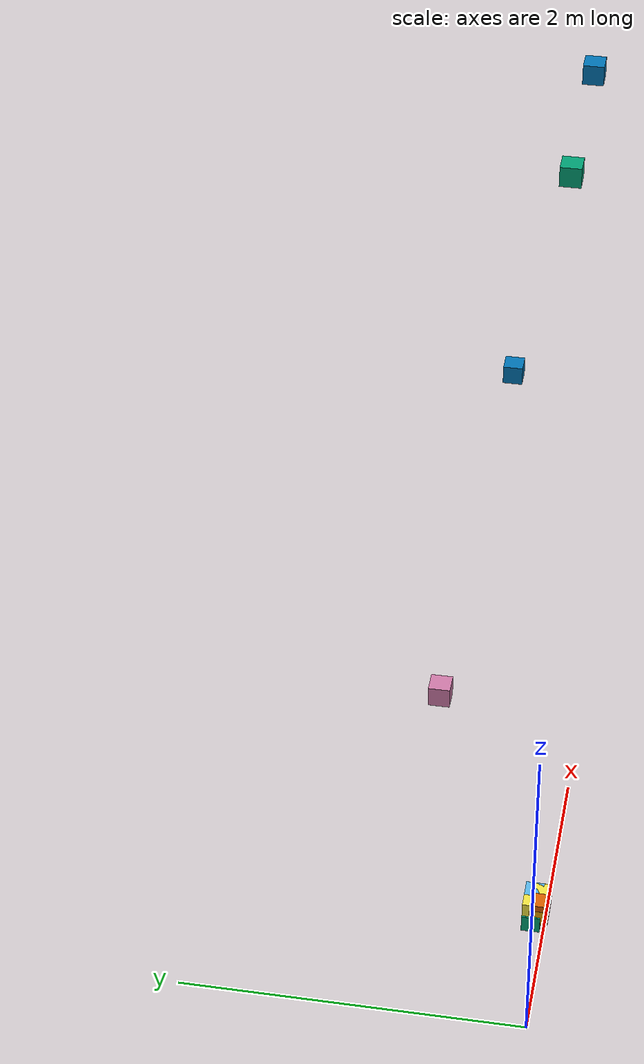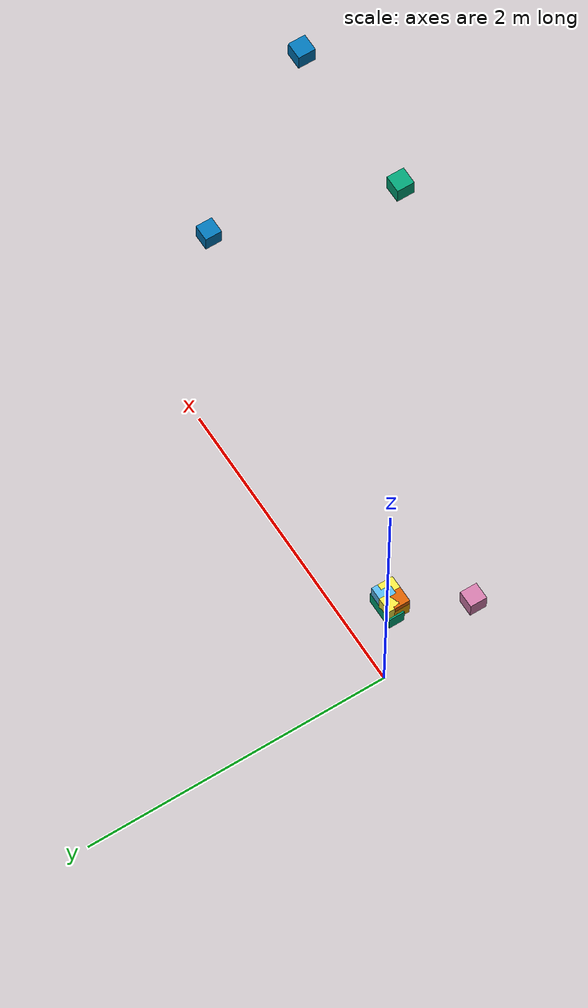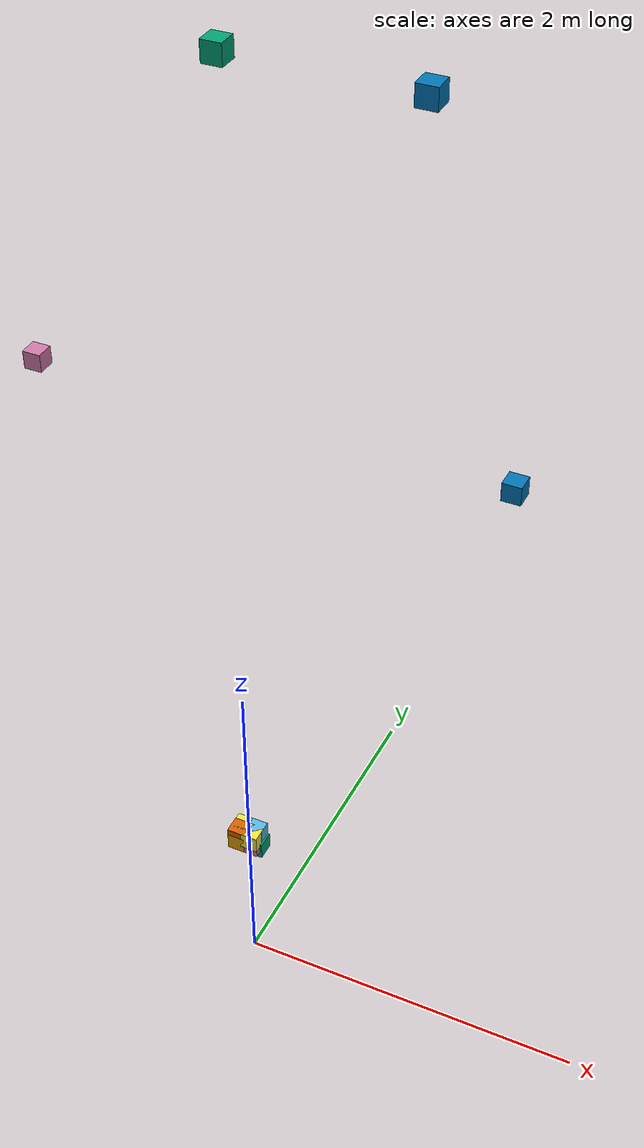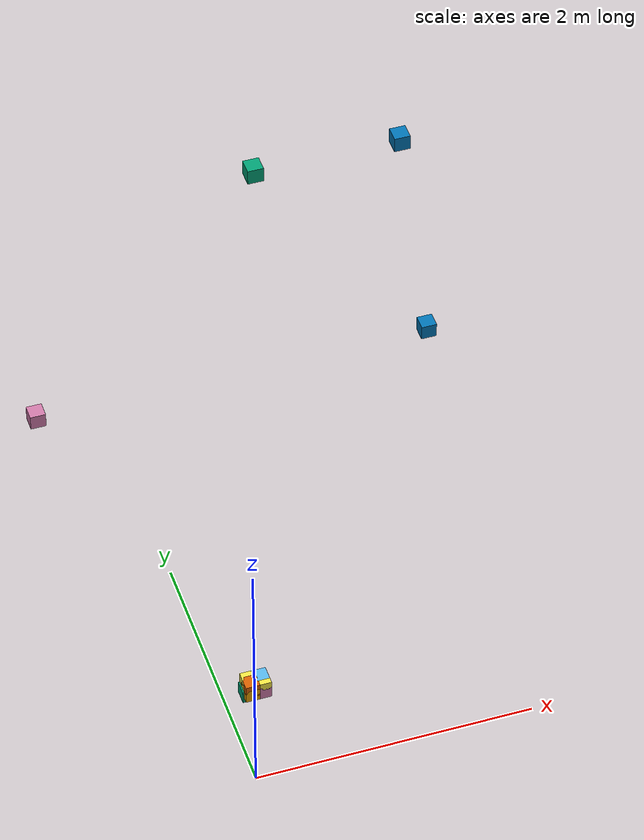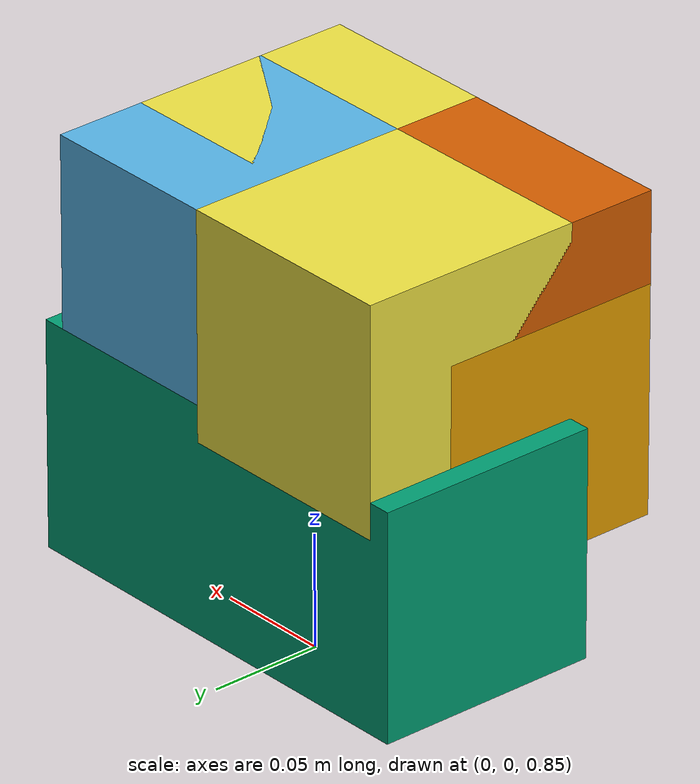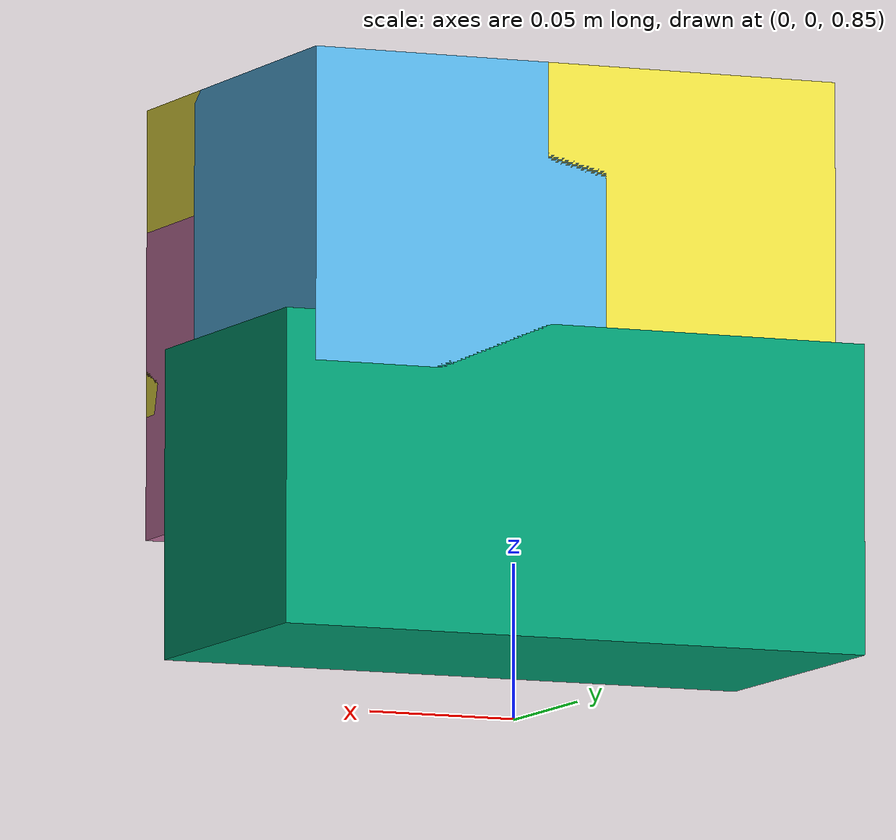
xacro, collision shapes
<?xml version="1.0"?>
<robot xmlns:xacro="http://www.ros.org/wiki/xacro" name="ela2">

  <xacro:include filename="$(find ela2_arms)/urdf/ela2_gazebo.xacro"/>

  <xacro:include filename="$(find ela2_arms)/urdf/ela2_ros2_control.xacro"/>

  <xacro:property name="PI" value="3.14159"/>
  <xacro:property name="effort" value="30.0"/>
  <xacro:property name="velocity" value="10.0"/>

  <xacro:macro name="default_transmission" params="number joint_name">
      <transmission name="transmission_${number}">
          <plugin>transmission_interface/SimpleTransmission</plugin>
          <actuator name="motor_${number}" role="actuator1">
              <hardwareInterface>hardware_interface/PositionJointInterface</hardwareInterface>
          </actuator>
          <joint name="${joint_name}" role="joint1">
              <hardwareInterface>hardware_interface/PositionJointInterface</hardwareInterface>
              <mechanical_reduction>1.0</mechanical_reduction>
          </joint>
      </transmission>
  </xacro:macro>

  <!-- World link (placeholder) -->
  <link name="world"/>

  <!-- Base link -->
  <link name="base_link">
    <visual>
      <origin xyz="0 0 0" rpy="0 0 0"/>
      <geometry>
        <mesh filename="package://ela2_arms/meshes/base.stl" scale="0.01 0.01 0.01"/>
      </geometry>
    </visual>

  </link>

  <!-- Virtual Joint (base link to world) -->
  <joint name="virtual_joint" type="fixed">
    <parent link="world"/>
    <child link="base_link"/>
    <origin xyz="0 0 0" rpy="0 0 0"/>
  </joint>

  <!-- ====================== Chest  ======================  -->
  <link name="chest">
    <visual>
      <origin xyz="0 0 -4.65" rpy="0 0 0"/>
      <geometry>
        <mesh filename="package://ela2_arms/meshes/chest.stl" scale="0.01 0.01 0.01"/>
      </geometry>
    </visual>
    <collision>
      <origin xyz="0 0 -4.65" rpy="0 0 0"/>
      <geometry>
        <box size="0.2 0.1 0.1"/>
      </geometry>
    </collision>
    <inertial>
      <origin xyz="0 0 0" rpy="0 0 0"/>
      <mass value="1.0"/>
      <inertia ixx="1" ixy="0.0" ixz="0.0" iyy="1" iyz="0.0" izz="1"/>
    </inertial>
  </link>

  <!-- Chest joint (fixed to base link) -->
  <joint name="base_joint" type="fixed">
    <parent link="base_link"/>
    <child link="chest"/>
    <origin xyz="0 0 5.57" rpy="0 0 0"/>
  </joint>

  <!--====================== Left Upper Arm ======================-->
  <link name="left_upper_arm_x">
    <visual>
      <origin xyz="1 -0.4 -4.5661" rpy="0 0 0"/>
      <geometry>
        <mesh filename="package://ela2_arms/meshes/Left_Upper_Arm.stl" scale="0.01 0.01 0.01"/>
      </geometry>
    </visual>
    <collision>
      <origin xyz="1 -0.4 -4.5661" rpy="0 0 0"/>
      <geometry>
        <box size="0.1 0.1 0.1"/>
      </geometry>
    </collision>
    <inertial>
      <origin xyz="0 0 0" rpy="0 0 0"/>
      <mass value="1.0"/>
      <inertia ixx="1" ixy="0.0" ixz="0.0" iyy="1" iyz="0.0" izz="1"/>
    </inertial>
  </link>

  <link name="left_upper_arm_y">
    <visual>
      <origin xyz="2 -0.4 0" rpy="0 0 0"/>
      <geometry>
        <box size="0.01 0.01 0.01"/>
      </geometry>
    </visual>
    <collision>
      <origin xyz="2 -0.4 0" rpy="0 0 0"/>
      <geometry>
        <box size="0.1 0.1 0.1"/>
      </geometry>
    </collision>
    <inertial>
      <origin xyz="0 0 0" rpy="0 0 0"/>
      <mass value="1.0"/>
      <inertia ixx="1" ixy="0.0" ixz="0.0" iyy="1" iyz="0.0" izz="1"/>
    </inertial>
  </link>

  <joint name="left_upper_arm_y_joint" type="revolute">
    <parent link="chest"/>
    <child link="left_upper_arm_y"/>
    <axis xyz="0 1 0"/>
    <origin xyz="-1.04 0.4 0" rpy="0 0 0"/>
    <limit lower="0" upper="${PI/2}" effort="${effort}" velocity="${velocity}"/>
  </joint>

  <joint name="left_upper_arm_x_joint" type="revolute">
    <parent link="left_upper_arm_y"/>
    <child link="left_upper_arm_x"/>
    <axis xyz="1 0 0"/>
    <origin xyz="0 0 0" rpy="0 0 0"/>
    <limit lower="-${1.197}" upper="${0.704}" effort="${effort}" velocity="${velocity}"/>
  </joint>

  <!--====================== Left Forearm ======================-->
  <link name="left_forearm_x">
    <visual>
      <origin xyz="1.25 -0.4 -2.5661" rpy="0 0 0"/>
      <geometry>
        <mesh filename="package://ela2_arms/meshes/Left_Forearm.stl" scale="0.01 0.01 0.01"/>
      </geometry>
    </visual>
    <collision>
      <origin xyz="1.25 -0.4 -2.5661" rpy="0 0 0"/>
      <geometry>
        <box size="0.1 0.1 0.1"/>
      </geometry>
    </collision>
    <inertial>
      <origin xyz="0 0 0" rpy="0 0 0"/>
      <mass value="1.0"/>
      <inertia ixx="1" ixy="0.0" ixz="0.0" iyy="1" iyz="0.0" izz="1"/>
    </inertial>
  </link>

  <link name="left_forearm_z">
    <visual>
      <origin xyz="0 0 0" rpy="0 0 0"/>
      <geometry>
        <box size="0.01 0.01 0.01"/>
      </geometry>
    </visual>
    <collision>
      <origin xyz="0 0 0" rpy="0 0 0"/>
      <geometry>
        <box size="0.1 0.1 0.1"/>
      </geometry>
    </collision>
    <inertial>
      <origin xyz="0 0 0" rpy="0 0 0"/>
      <mass value="1.0"/>
      <inertia ixx="1" ixy="0.0" ixz="0.0" iyy="1" iyz="0.0" izz="1"/>
    </inertial>
  </link>

  <joint name="left_forearm_z_joint" type="revolute">
    <parent link="left_upper_arm_x"/>
    <child link="left_forearm_z"/>
    <axis xyz="0 0 1"/>
    <origin xyz="-0.25 -0.04 -2" rpy="0 0 0"/>
    <limit lower="-${PI/2}" upper="${PI/2}" effort="${effort}" velocity="${velocity}"/>
  </joint>

  <joint name="left_forearm_x_joint" type="revolute">
    <parent link="left_forearm_z"/>
    <child link="left_forearm_x"/>
    <axis xyz="1 0 0"/>
    <origin xyz="0 0 0" rpy="0 0 0"/>
    <limit lower="-${PI/2}" upper="${PI/2}" effort="${effort}" velocity="${velocity}"/>
  </joint>

  <!--====================== Left Hand ======================-->
   <!-- Left Palm -->
  <link name="Left_Palm">
    <visual>
      <origin xyz="1.25 -0.4 -2.5661" rpy="0 0 0"/>
      <geometry>
        <mesh filename="package://ela2_arms/meshes/Left_Palm.stl" scale="0.01 0.01 0.01"/>
      </geometry>
    </visual>
    <collision>
      <origin xyz="1.25 -0.4 -2.5661" rpy="0 0 0"/>
      <geometry>
        <box size="0.1 0.1 0.1"/>
      </geometry>
    </collision>
    <inertial>
      <origin xyz="0 0 0" rpy="0 0 0"/>
      <mass value="1.0"/>
      <inertia ixx="1" ixy="0.0" ixz="0.0" iyy="1" iyz="0.0" izz="1"/>
    </inertial>
  </link>

  <joint name="left_palm_joint" type="fixed">
    <parent link="left_forearm_x"/>
    <child link="Left_Palm"/>
    <origin xyz="0 0 0" rpy="0 0 0"/>
  </joint>

  <!-- Left Finger -->
  <link name="left_Finger">
    <visual>
      <origin xyz="1 -0.4 -0.5661" rpy="0 0 0"/>
      <geometry>
        <mesh filename="package://ela2_arms/meshes/Left_Finger.stl" scale="0.01 0.01 0.01"/>
      </geometry>
    </visual>
    <collision>
      <origin xyz="1 -0.4 -0.5661" rpy="0 0 0"/>
      <geometry>
        <box size="0.1 0.1 0.1"/>
      </geometry>
    </collision>
    <inertial>
      <origin xyz="0 0 0" rpy="0 0 0"/>
      <mass value="1.0"/>
      <inertia ixx="1" ixy="0.0" ixz="0.0" iyy="1" iyz="0.0" izz="1"/>
    </inertial>
  </link>

  <joint name="left_finger_joint" type="revolute">
    <parent link="Left_Palm"/>
    <child link="left_Finger"/>
    <axis xyz="0 1 0"/>
    <origin xyz="0.25 0 -2.04" rpy="0 0 0"/>
    <limit lower="-${0.4}" upper="${0.3}" effort="${effort}" velocity="${velocity}"/>
  </joint>

<!--====================== Right Upper Arm ======================-->
  <link name="right_upper_arm_x">
    <visual>
      <origin xyz="-1 -0.4 -4.5661" rpy="0 0 0"/>
      <geometry>
        <mesh filename="package://ela2_arms/meshes/Right_Upper_Arm.stl" scale="0.01 0.01 0.01"/>
      </geometry>
    </visual>
    <collision>
      <origin xyz="-1 -0.4 -4.5661" rpy="0 0 0"/>
      <geometry>
        <box size="0.1 0.1 0.1"/>
      </geometry>
    </collision>
    <inertial>
      <origin xyz="0 0 0" rpy="0 0 0"/>
      <mass value="1.0"/>
      <inertia ixx="1" ixy="0.0" ixz="0.0" iyy="1" iyz="0.0" izz="1"/>
    </inertial>
  </link>

  <link name="right_upper_arm_y">
    <visual>
      <origin xyz="-1 -0.4 0" rpy="0 0 0"/>
      <geometry>
        <box size="0.01 0.01 0.01"/>
      </geometry>
    </visual>
    <collision>
      <origin xyz="-1 -0.4 0" rpy="0 0 0"/>
      <geometry>
        <box size="0.1 0.1 0.1"/>
      </geometry>
    </collision>
    <inertial>
      <origin xyz="0 0 0" rpy="0 0 0"/>
      <mass value="1.0"/>
      <inertia ixx="1" ixy="0.0" ixz="0.0" iyy="1" iyz="0.0" izz="1"/>
    </inertial>
  </link>

  <joint name="right_upper_arm_y_joint" type="revolute">
    <parent link="chest"/>
    <child link="right_upper_arm_y"/>
    <axis xyz="0 1 0"/>
    <origin xyz="1.04 0.4 0" rpy="0 0 0"/>
    <limit lower="-${PI/2}" upper="${0}" effort="${effort}" velocity="${velocity}"/>
  </joint>

  <joint name="right_upper_arm_x_joint" type="revolute">
    <parent link="right_upper_arm_y"/>
    <child link="right_upper_arm_x"/>
    <axis xyz="1 0 0"/>
    <origin xyz="0 0 0" rpy="0 0 0"/>
    <limit lower="-${1.197}" upper="${0.704}" effort="${effort}" velocity="${velocity}"/>
  </joint>

  <!--====================== Right Forearm ======================-->
  <link name="right_forearm_x">
    <visual>
      <origin xyz="-1.25 -0.4 -2.5661" rpy="0 0 0"/>
      <geometry>
        <mesh filename="package://ela2_arms/meshes/Right_Forearm.stl" scale="0.01 0.01 0.01"/>
      </geometry>
    </visual>
    <collision>
      <origin xyz="-1.25 -0.4 -2.5661" rpy="0 0 0"/>
      <geometry>
        <box size="0.1 0.1 0.1"/>
      </geometry>
    </collision>
    <inertial>
      <origin xyz="0 0 0" rpy="0 0 0"/>
      <mass value="1.0"/>
      <inertia ixx="1" ixy="0.0" ixz="0.0" iyy="1" iyz="0.0" izz="1"/>
    </inertial>
  </link>

  <link name="right_forearm_z">
    <visual>
      <origin xyz="0 0 0" rpy="0 0 0"/>
      <geometry>
        <box size="0.01 0.01 0.01"/>
      </geometry>
    </visual>
    <collision>
      <origin xyz="0 0 0" rpy="0 0 0"/>
      <geometry>
        <box size="0.1 0.1 0.1"/>
      </geometry>
    </collision>
    <inertial>
      <origin xyz="0 0 0" rpy="0 0 0"/>
      <mass value="1.0"/>
      <inertia ixx="1" ixy="0.0" ixz="0.0" iyy="1" iyz="0.0" izz="1"/>
    </inertial>
  </link>

  <joint name="right_forearm_z_joint" type="revolute">
    <parent link="right_upper_arm_x"/>
    <child link="right_forearm_z"/>
    <axis xyz="0 0 1"/>
    <origin xyz="0.25 -0.04 -2" rpy="0 0 0"/>
    <limit lower="-${PI/2}" upper="${PI/2}" effort="${effort}" velocity="${velocity}"/>
  </joint>

  <joint name="right_forearm_x_joint" type="revolute">
    <parent link="right_forearm_z"/>
    <child link="right_forearm_x"/>
    <axis xyz="1 0 0"/>
    <origin xyz="0 0 0" rpy="0 0 0"/>
    <limit lower="-${PI/2}" upper="${PI/2}" effort="${effort}" velocity="${velocity}"/>
  </joint>

  <!--====================== Right Hand ======================-->
   <!-- ight Palm -->
  <link name="Right_Palm">
    <visual>
      <origin xyz="-1.25 -0.4 -2.5661" rpy="0 0 0"/>
      <geometry>
        <mesh filename="package://ela2_arms/meshes/Right_Palm.stl" scale="0.01 0.01 0.01"/>
      </geometry>
    </visual>
    <collision>
      <origin xyz="-1.25 -0.4 -2.5661" rpy="0 0 0"/>
      <geometry>
        <box size="0.1 0.1 0.1"/>
      </geometry>
    </collision>
    <inertial>
      <origin xyz="0 0 0" rpy="0 0 0"/>
      <mass value="1.0"/>
      <inertia ixx="1" ixy="0.0" ixz="0.0" iyy="1" iyz="0.0" izz="1"/>
    </inertial>
  </link>

  <joint name="right_palm_joint" type="fixed">
    <parent link="right_forearm_x"/>
    <child link="Right_Palm"/>
    <origin xyz="0 0 0" rpy="0 0 0"/>
  </joint>

  <!-- Right Finger -->
  <link name="right_Finger">
    <visual>
      <origin xyz="-1 -0.4 -0.5661" rpy="0 0 0"/>
      <geometry>
        <mesh filename="package://ela2_arms/meshes/Right_Finger.stl" scale="0.01 0.01 0.01"/>
      </geometry>
    </visual>
    <collision>
      <origin xyz="-1 -0.4 -0.5661" rpy="0 0 0"/>
      <geometry>
        <box size="0.1 0.1 0.1"/>
      </geometry>
    </collision>
    <inertial>
      <origin xyz="0 0 0" rpy="0 0 0"/>
      <mass value="1.0"/>
      <inertia ixx="1" ixy="0.0" ixz="0.0" iyy="1" iyz="0.0" izz="1"/>
    </inertial>
  </link>

  <joint name="right_finger_joint" type="revolute">
    <parent link="Right_Palm"/>
    <child link="right_Finger"/>
    <axis xyz="0 1 0"/>
    <origin xyz="-0.25 0 -2.04" rpy="0 0 0"/>
    <limit lower="-${0.4}" upper="${0.3}" effort="${effort}" velocity="${velocity}"/>
  </joint>

  <xacro:default_transmission number="1" joint_name="left_upper_arm_y_joint"/>
  <xacro:default_transmission number="2" joint_name="left_upper_arm_x_joint"/>
  <xacro:default_transmission number="3" joint_name="left_forearm_z_joint"/>
  <xacro:default_transmission number="4" joint_name="left_forearm_x_joint"/>
  <xacro:default_transmission number="5" joint_name="left_finger_joint"/>
  <xacro:default_transmission number="6" joint_name="right_upper_arm_y_joint"/>
  <xacro:default_transmission number="7" joint_name="right_upper_arm_x_joint"/>
  <xacro:default_transmission number="8" joint_name="right_forearm_z_joint"/>
  <xacro:default_transmission number="9" joint_name="right_forearm_x_joint"/>
  <xacro:default_transmission number="10" joint_name="right_finger_joint"/>

</robot>
